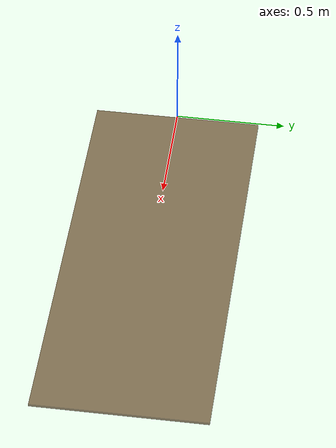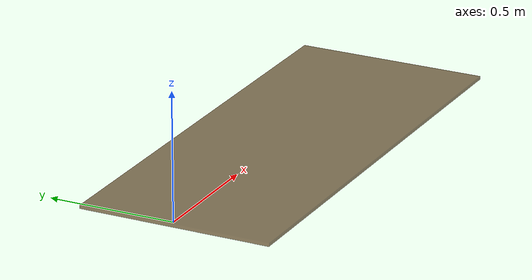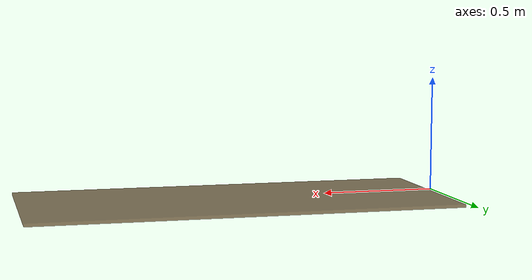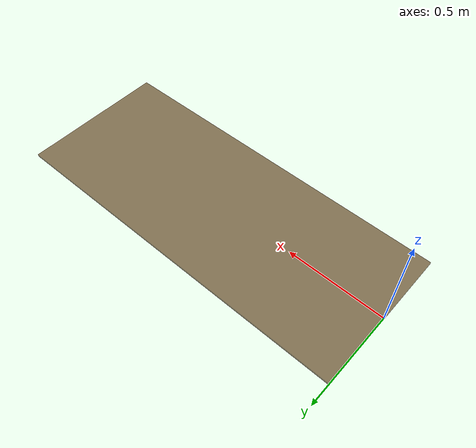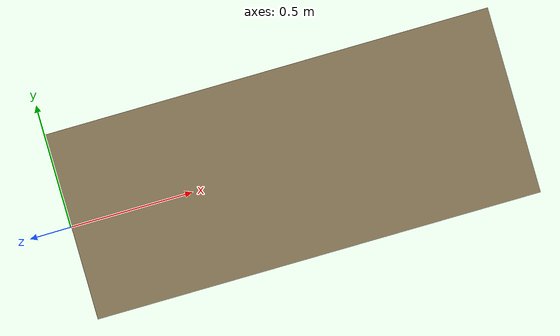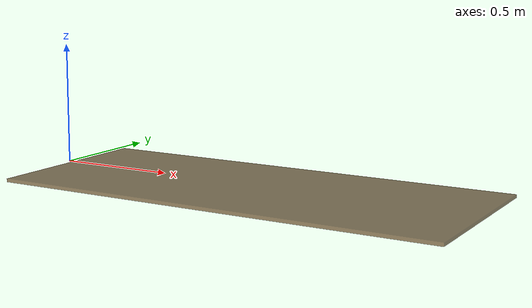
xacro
<?xml version="1.0" encoding="UTF-8" ?>
<robot name="prsg2_robot" xmlns:xacro="http://www.ros.org/wiki/xacro">

  <xacro:property name="degree" value="${pi / 180}" />
  <xacro:property name="inch" value="0.0254" />

  <xacro:property name="table_width" value="${30 * inch}" />
  <xacro:property name="table_length" value="${72 * inch}" />
  <xacro:property name="table_thickness" value="${0.5 * inch}" />

  <xacro:macro name="material_color" params="r g b a:=1.0">
    <material name="color_${r}_${g}_${b}_{$a}">
      <color rgba="${r} ${g} ${b} ${a}" />
    </material>
  </xacro:macro>

  <!-- The table, as a cube -->
  <link name="table">
    <visual>
      <origin xyz="${table_length / 2} 0 ${-table_thickness}" rpy="0 0 0" />
      <geometry>
        <box size="${table_length} ${table_width} ${table_thickness}" />
      </geometry>
      <xacro:material_color r="0.37" g="0.25" b="0.10" a="0.7" />
    </visual>
  </link>

</robot>
